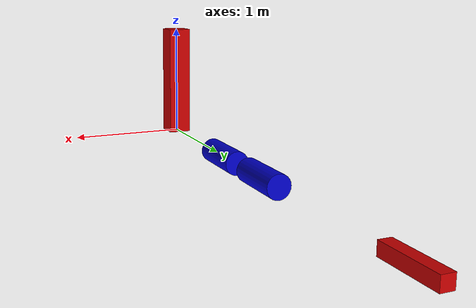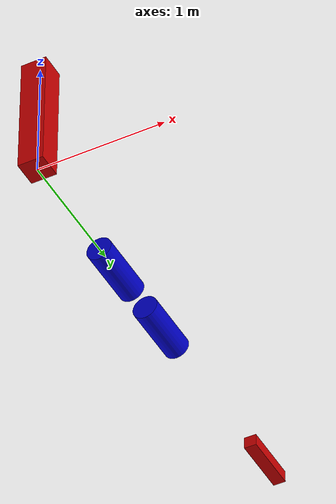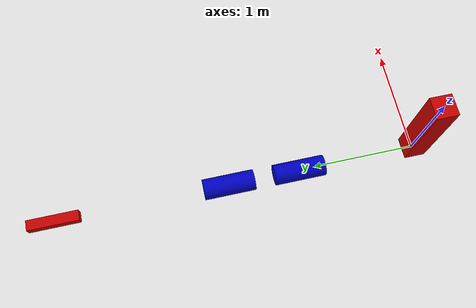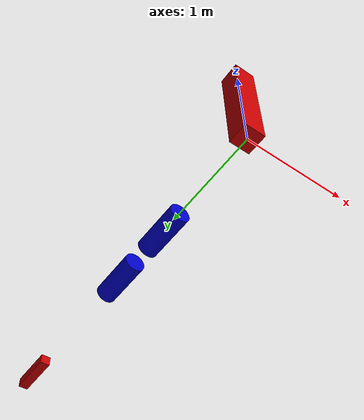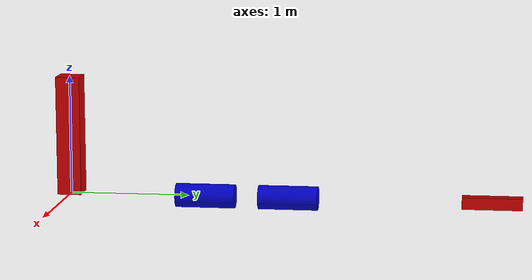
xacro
<?xml version="1.0"?>
<robot name="rocuto" xmlns:xacro="http://www.ros.org/wiki/xacro">

  <xacro:include filename="$(find rocuto_h23)/urdf/rocuto_pkg/materials.xacro" />
  <xacro:include filename="$(find rocuto_h23)/urdf/rocuto_pkg/gazebo_rocuto.urdf.gazebo" />

  <!-- constants -->
  <xacro:property name="M_PI" value="3.14159"/>

  <!-- frame properties -->
  <xacro:property name="frame_x_size" value="0.2" />
  <xacro:property name="frame_y_size" value="0.2" />
  <xacro:property name="frame_z_size" value="1" />

  <!-- link Properties -->
  <xacro:property name="link1_length" value="0.5" />
  <xacro:property name="link1_radius" value="0.1" />

  <!-- tool Properties -->
  <xacro:property name="tool_length" value="0.1" />
  <xacro:property name="tool_width" value="0.5" />
  <xacro:property name="tool_height" value="0.1" />

  <!-- frame origin -->
  <xacro:property name="frame_x_origin" value="0" />
  <xacro:property name="frame_y_origin" value="0" />
  <xacro:property name="frame_z_origin" value="0.5" />

  <!-- joint 1 origin -->
  <xacro:property name="joint1_x" value="0" />
  <xacro:property name="joint1_y" value="${frame_y_size}" />
  <xacro:property name="joint1_z" value="0" />

  <!-- joint 2 origin -->
  <xacro:property name="joint2_x" value="${joint1_x}" />
  <xacro:property name="joint2_y" value="${joint1_y + 0.5}" />
  <xacro:property name="joint2_z" value="${joint1_z}" />

  <!-- joint 3 origin -->
  <xacro:property name="joint3_x" value="${joint1_x}" />
  <xacro:property name="joint3_y" value="${joint2_y + 0.5}" />
  <xacro:property name="joint3_z" value="${joint1_z}" />

<!-- ramme på robotplatform -->
  <link name="frame">

    <collision>
      <origin xyz="${frame_x_origin} ${frame_y_origin} ${frame_z_origin}" rpy="0 0 0"/>
      <geometry>
        <box size="${frame_x_size} ${frame_y_size} ${frame_z_size}"/>
      </geometry>
    </collision>

    <visual name='frame_visual'>
    <origin xyz="${frame_x_origin} ${frame_y_origin} ${frame_z_origin}" rpy="0 0 0"/>
      <geometry>
        <box size="${frame_x_size} ${frame_y_size} ${frame_z_size}"/>
        <mesh filename="package://rocuto_h23/meshes/rocuto_pkg/link.stl"/>
      </geometry>
      <material name="red"/>
    </visual>

    <inertial>
      <mass value="1e-5" />
      <origin xyz="${frame_x_origin} ${frame_y_origin} ${frame_z_origin}" rpy="0 0 0"/>
      <inertia ixx="1e-6" ixy="0" ixz="0" iyy="1e-6" iyz="0" izz="1e-6" />
    </inertial>

  </link>

<!-- link1 -->
  <link name="link1">
    <collision>
      <origin xyz="${joint1_x} ${joint1_y + 0.25} ${joint1_z}" rpy="${pi/2} 0 0"/>
      <geometry>
        <cylinder length="${link1_length}" radius="${link1_radius}"/>
      </geometry>
    </collision>

    <visual>
      <origin xyz="${joint1_x} ${joint1_y + 0.25} ${joint1_z}" rpy="${pi/2} 0 0"/>
      <geometry>
        <cylinder length="${link1_length}" radius="${link1_radius}"/>
        <mesh filename="package://rocuto_h23/meshes/rocuto_pkg/link.stl"/>
      </geometry>
      <material name="blue"/>
    </visual>

    <inertial>
      <mass value="1e-5" />
<origin xyz="${joint1_x} ${joint1_y + 0.25} ${joint1_z}" rpy="${pi/2} 0 0"/>
      <inertia ixx="1e-6" ixy="0" ixz="0" iyy="1e-6" iyz="0" izz="1e-6" />
    </inertial>

  </link>

<!-- link2 -->
  <link name="link2">
    <collision>
      <origin xyz="${joint2_x} ${joint2_y + 0.25} ${joint2_z}" rpy="${pi/2} 0 0"/>
      <geometry>
        <cylinder length="${link1_length}" radius="${link1_radius}"/>
      </geometry>
    </collision>

    <visual>
      <origin xyz="${joint2_x} ${joint2_y + 0.25} ${joint2_z}" rpy="${pi/2} 0 0"/>
      <geometry>
        <cylinder length="${link1_length}" radius="${link1_radius}"/>
        <mesh filename="package://rocuto_h23/meshes/rocuto_pkg/link.stl"/>
      </geometry>
      <material name="blue"/>
    </visual>

    <inertial>
      <mass value="1e-5" />
      <origin xyz="${joint2_x} ${joint2_y + 0.25} ${joint2_z}" rpy="${pi/2} 0 0"/>
      <inertia ixx="1e-6" ixy="0" ixz="0" iyy="1e-6" iyz="0" izz="1e-6" />
    </inertial>

  </link>

<!-- tool -->
  <link name="tool">
    <collision>
      <origin xyz="${joint3_x} ${joint3_y + 0.25} ${joint3_z}" rpy="0 0 0"/>
      <geometry>
        <box size="${tool_length} ${tool_width} ${tool_height}"/>
      </geometry>
    </collision>

    <visual>
      <origin xyz="${joint3_x} ${joint3_y + 0.25} ${joint3_z}" rpy="0 0 0"/>
      <geometry>
        <box size="${tool_length} ${tool_width} ${tool_height}"/>
        <mesh filename="package://rocuto_h23/meshes/rocuto_pkg/frame_visual.dae"/>
      </geometry>
      <material name="red"/>
    </visual>

    <inertial>
      <mass value="1e-5" />
      <origin xyz="${joint3_x} ${joint3_y + 0.25} ${joint3_z}" rpy="0 0 0"/>
      <inertia ixx="1e-6" ixy="0" ixz="0" iyy="1e-6" iyz="0" izz="1e-6" />
    </inertial>

  </link>

<!-- leddet mellom ramme og link1 -->
  <joint name="link1_to_link2" type="revolute">
    <origin xyz="${joint1_x} ${joint1_y} ${joint1_z}" rpy="0 0 0"/>
    <parent link="link1"/>
    <child link="link2"/>
    <axis xyz="0 0 1" rpy="0 0 0"/>
    <limit effort="100" velocity="100" lower="-${pi}" upper="${pi}"/>
    <joint_properties damping="0.0" friction="0.0"/>
  </joint>

<!-- leddet mellom link1 og link2 -->
  <joint name="frame_to_link1" type="revolute">
    <origin xyz="${joint2_x} ${joint2_y} ${joint2_z}" rpy="0 0 0"/>
    <parent link="frame"/>
    <child link="link1"/>
    <axis xyz="0 0 1" rpy="0 0 0"/>
    <limit effort="100" velocity="100" lower="-${pi}" upper="${pi}"/>
    <joint_properties damping="0.0" friction="0.0"/>
  </joint>

<!-- Dette er ikke et ledd bare kobling mellom link2 og tool -->
  <joint name="link2_to_tool" type="fixed">
    <origin xyz="${joint3_x} ${joint3_y} ${joint3_z}" rpy="0 0 0"/>
    <parent link="link2"/>
    <child link="tool"/>
  </joint>

  <transmission name="link1_tran">
    <type>transmission_interface/SimpleTransmission</type>
    <joint name="frame_to_link1">
      <hardwareInterface>EffortJointInterface</hardwareInterface>
    </joint>
    <actuator name="link1_motor">
      <hardwareInterface>EffortJointInterface</hardwareInterface>
      <mechanicalReduction>1</mechanicalReduction>
    </actuator>
  </transmission>

  <transmission name="link2_tran">
    <type>transmission_interface/SimpleTransmission</type>
    <joint name="link1_to_link2">
      <hardwareInterface>EffortJointInterface</hardwareInterface>
    </joint>
    <actuator name="link2_motor">
      <hardwareInterface>EffortJointInterface</hardwareInterface>
      <mechanicalReduction>1</mechanicalReduction>
    </actuator>
  </transmission>

</robot>

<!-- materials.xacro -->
<robot>

  <material name="black">
    <color rgba="${0.0} ${0.0} ${0.0} ${1.0}"/>
  </material>

  <material name="blue">
    <color rgba="${0.0} ${0.0} ${0.8} ${1.0}"/>
  </material>

  <material name="green">
    <color rgba="${0.0} ${0.8} ${0.0} ${1.0}"/>
  </material>

  <material name="grey">
    <color rgba="${0.2} ${0.2} ${0.2} ${1.0}"/>
  </material>

  <material name="orange">
    <color rgba="${255/255} ${108/255} ${10/255} ${1.0}"/>
  </material>

  <material name="brown">
    <color rgba="${222/255} ${207/255} ${195/255} ${1.0}"/>
  </material>

  <material name="red">
    <color rgba="${0.8} ${0.0} ${0.0} ${1.0}"/>
  </material>

  <material name="white">
    <color rgba="${1.0} ${1.0} ${1.0} ${1.0}"/>
  </material>

</robot>
